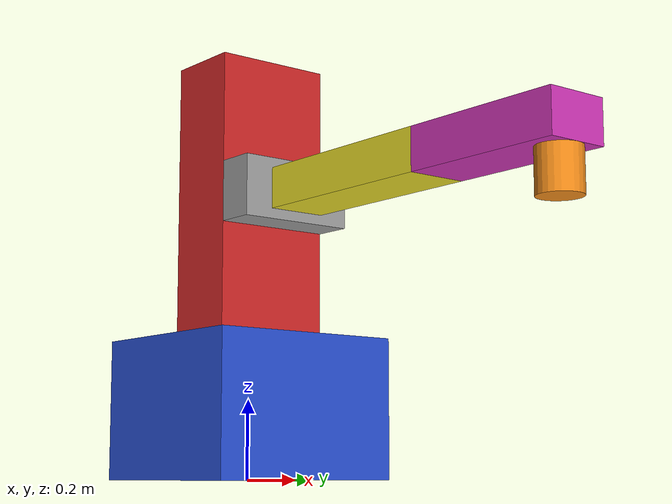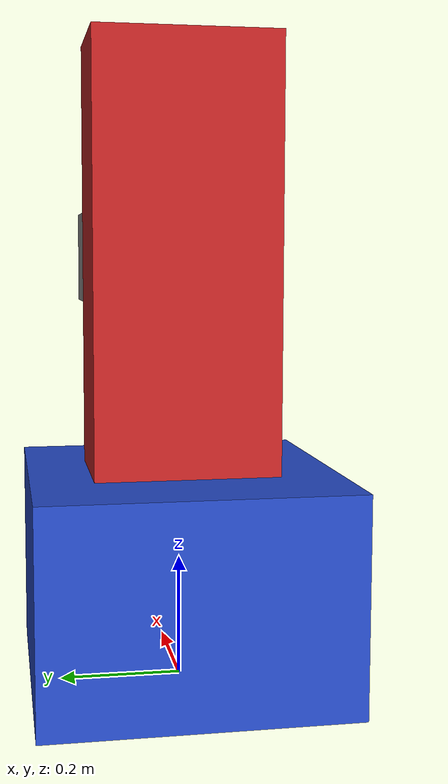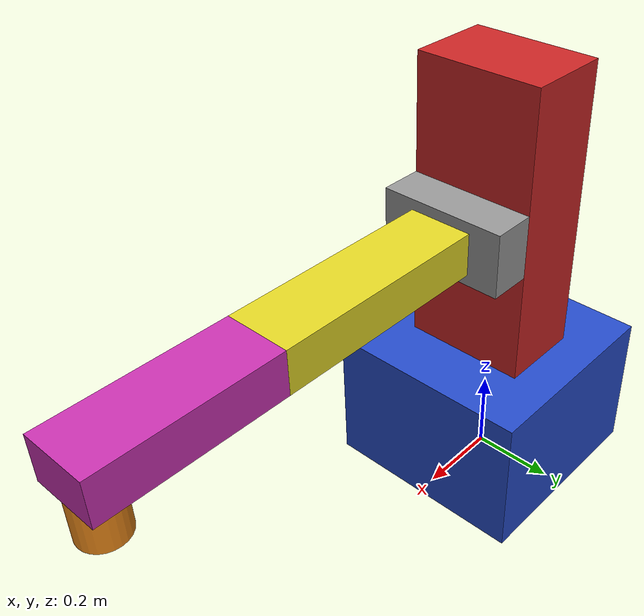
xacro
<?xml version="1.0"?>

<robot xmlns:xacro="http://www.ros.org/wiki/xacro">
    <!-- Properties -->
    <xacro:property name="base_lx" value="0.5" />
    <xacro:property name="base_ly" value="0.5" />
    <xacro:property name="base_lz" value="0.35" />
    <xacro:property name="base_mass" value="116" />

    <xacro:property name="column1_lx" value="0.2" />
    <xacro:property name="column1_ly" value="0.3" />
    <xacro:property name="column1_lz" value="0.7" />
    <xacro:property name="column1_mass" value="1" />

    <xacro:property name="carriage1_lx" value="0.1" />
    <xacro:property name="carriage1_ly" value="${column1_ly}" />
    <xacro:property name="carriage1_lz" value="0.15" />
    <xacro:property name="carriage1_mass" value="0.7" />

    <xacro:property name="shoulder_lx" value="0.55" />
    <xacro:property name="shoulder_ly" value="0.15" />
    <xacro:property name="shoulder_lz" value="0.1" />
    <xacro:property name="shoulder_mass" value="0.5" />

    <xacro:property name="elbow_lx" value="0.4" />
    <xacro:property name="elbow_ly" value="0.15" />
    <xacro:property name="elbow_lz" value="0.1" />
    <xacro:property name="elbow_mass" value="0.3" />

    <xacro:property name="ef_rad" value="0.05" />
    <xacro:property name="ef_len" value="0.1" />
    <xacro:property name="ef_mass" value="0.1" />

    <xacro:property name="camera_lx" value="0.02" />
    <xacro:property name="camera_ly" value="0.02" />
    <xacro:property name="camera_lz" value="0.02" />

    <!-- Base -->
    <link name="base_footprint" />

    <link name="base_link">

        <visual>
            <geometry>
                <box size="${base_lx} ${base_ly} ${base_lz}" />
            </geometry>
            <origin xyz="0 0 0" rpy="0 0 0" />
            <material name="blue" />
        </visual>

        <collision>
            <geometry>
                <box size="${base_lx} ${base_ly} ${base_lz}" />
            </geometry>
            <origin xyz="0 0 0" rpy="0 0 0" />
        </collision>

        <xacro:box_inertial m="${base_mass}" lx="${base_lx}" ly="${base_ly}" lz="${base_lz}" o_xyz="0 0 0" o_rpy="0 0 0" />
    </link>

    <joint name="footprint_base_joint" type="fixed">
        <parent link="base_footprint" />
        <child link="base_link" />
        <origin xyz="0 0 ${base_lz / 2}" rpy="0.0 0.0 0.0" />
    </joint>

    <!-- Column 1 link -->
    <link name="column1_link">

        <visual>
            <geometry>
                <box size="${column1_lx} ${column1_ly} ${column1_lz}" />
            </geometry>
            <origin xyz="0 0 ${column1_lz * 0.5}" rpy="0 0 0" />
            <material name="red" />
        </visual>

        <collision>
            <geometry>
                <box size="${column1_lx} ${column1_ly} ${column1_lz}" />
            </geometry>
            <origin xyz="0 0 ${column1_lz / 2}" rpy="0 0 0" />
        </collision>

        <xacro:box_inertial m="${column1_mass}" lx="${column1_lx}" ly="${column1_ly}" lz="${column1_lz}" o_xyz="0 0 ${column1_lz / 2}" o_rpy="0 0 0" />

    </link>

    <joint name="base_column1_joint" type="fixed">
        <origin xyz="0 0 ${base_lz / 2}" rpy="0 0 0" />
        <parent link="base_link" />
        <child link="column1_link" />
    </joint>

    <link name="carriage1_link">

        <visual>
            <origin xyz="${carriage1_lx / 2} 0 0" rpy="0 0 0" />
            <geometry>
                <box size="${carriage1_lx} ${carriage1_ly} ${carriage1_lz}" />
            </geometry>
            <material name="grey" />
        </visual>

        <collision>
            <origin xyz="${carriage1_lx / 2} 0 0" rpy="0 0 0" />
            <geometry>
                <box size="${carriage1_lx} ${carriage1_ly} ${carriage1_lz}" />
            </geometry>
        </collision>

        <xacro:box_inertial m="${carriage1_mass}" lx="${carriage1_lx}" ly="${carriage1_ly}" lz="${carriage1_lz}" o_xyz="${carriage1_lx / 2} 0 0" o_rpy="0 0 0" />

    </link>

    <joint name="column1_carriage1_joint" type="prismatic">
        <origin xyz="${carriage1_lx} 0 0" rpy="0 0 0" />
        <parent link="column1_link" />
        <child link="carriage1_link" />
        <axis xyz="0 0 1" />
        <limit lower="${carriage1_lz / 2}" upper="${column1_lz - carriage1_lz / 2}" effort="500.0"
            velocity="0.1" />
    </joint>

    <!-- Shoulder -->
    <link name="shoulder_link">

        <visual>
            <origin xyz="${shoulder_lx / 2} 0 0" rpy="0 0 0" />
            <geometry>
                <box size="${shoulder_lx} ${shoulder_ly} ${shoulder_lz}" />
            </geometry>
            <material name="yellow" />
        </visual>

        <collision>
            <origin xyz="${shoulder_lx / 2} 0 0" rpy="0 0 0" />
            <geometry>
                <box size="${shoulder_lx} ${shoulder_ly} ${shoulder_lz}" />
            </geometry>
        </collision>

        <xacro:box_inertial m="${shoulder_mass}" lx="${shoulder_lx}" ly="${shoulder_ly}" lz="${shoulder_lz}" o_xyz="${shoulder_lx / 2} 0 0" o_rpy="0 0 0" />

    </link>

    <joint name="carriage1_shoulder_joint" type="revolute">
        <origin xyz="${carriage1_lx / 2} 0 0" rpy="0 0 0" />
        <parent link="carriage1_link" />
        <child link="shoulder_link" />
        <axis xyz="0 0 1" />
        <limit lower="${-pi * 0.9}" upper="${pi * 0.9}" effort="500" velocity="${pi}" />
    </joint>

    <!-- Elbow -->
    <link name="elbow_link">

        <visual>
            <geometry>
                <box size="${elbow_lx} ${elbow_ly} ${elbow_lz}" />
            </geometry>
            <origin xyz="${elbow_lx / 2} 0 0" rpy="0 0 0" />
            <material name="magenta" />
        </visual>

        <collision>
            <geometry>
                <box size="${elbow_lx} ${elbow_ly} ${elbow_lz}" />
            </geometry>
            <origin xyz="${elbow_lx / 2} 0 0" rpy="0 0 0" />
        </collision>

        <xacro:box_inertial m="${elbow_mass}" lx="${elbow_lx}" ly="${elbow_ly}" lz="${elbow_lz}" o_xyz="${elbow_lx / 2} 0 0" o_rpy="0 0 0" />

    </link>

    <joint name="shoulder_elbow_joint" type="revolute">
        <origin xyz="${shoulder_lx} 0 0" rpy="0 0 0" />
        <parent link="shoulder_link" />
        <child link="elbow_link" />
        <axis xyz="0 0 1" />
        <limit lower="${-pi * 0.9}" upper="${pi * 0.9}" effort="500" velocity="${pi}" />
    </joint>

    <!-- End Effector -->
    <link name="ef_link">

        <visual>
            <geometry>
                <cylinder radius="${ef_rad}" length="${ef_len}" />
            </geometry>
            <origin xyz="0 0 -${ef_len / 2}" rpy="0 0 0" />
            <material name="orange" />
        </visual>

        <collision>
            <geometry>
                <cylinder radius="${ef_rad}" length="${ef_len}" />
            </geometry>
            <origin xyz="0 0 -${ef_len / 2}" rpy="0 0 0" />
        </collision>

        <xacro:solid_cylinder_inertial m="${ef_mass}" r="${ef_rad}" l="${ef_len}" o_xyz="0 0 -${ef_len / 2}" o_rpy="0 0 0" />

    </link>

    <joint name="elbow_ef_joint" type="fixed">
        <origin xyz="${elbow_lx - ef_rad} 0 -${ef_len / 2}" rpy="0.0 0.0 0.0" />
        <parent link="elbow_link" />
        <child link="ef_link" />
    </joint>

    <link name="camera_link">
        <visual>
            <origin xyz="0 0 0" rpy="0 0 0"/>
            <geometry>
                <box size="${camera_lx} ${camera_ly} ${camera_lz}"/>
            </geometry>
            <material name="black" />
        </visual>
    </link>

    <joint name="ef_camera_joint" type="fixed">
        <origin xyz="0 0 0" rpy="0 ${pi/2} 0"/>
        <parent link="ef_link"/>
        <child link="camera_link"/>
    </joint>

</robot>
